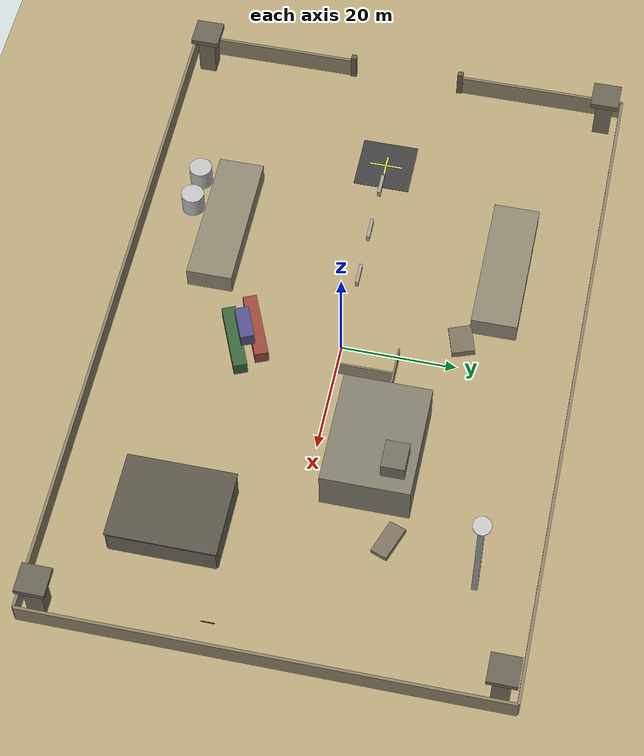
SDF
<sdf version="1.9">
 <world name="compound_ops">
  <physics name="1ms" type="ignore">
   <max_step_size>0.001</max_step_size>
   <real_time_factor>1.0</real_time_factor>
  </physics>
  <plugin filename="gz-sim-physics-system" name="gz::sim::systems::Physics"/>
  <plugin filename="gz-sim-scene-broadcaster-system" name="gz::sim::systems::SceneBroadcaster"/>
  <plugin filename="gz-sim-user-commands-system" name="gz::sim::systems::UserCommands"/>
  <plugin filename="gz-sim-sensors-system" name="gz::sim::systems::Sensors">
   <render_engine>ogre2</render_engine>
  </plugin>
  <plugin filename="gz-sim-imu-system" name="gz::sim::systems::Imu"/>
  <plugin filename="gz-sim-navsat-system" name="gz::sim::systems::NavSat"/>
  <plugin filename="gz-sim-apply-joint-force-system" name="gz::sim::systems::ApplyJointForce"/>
  <light type="directional" name="sun">
   <pose>0 0 50 0 0 0</pose>
   <diffuse>0.9 0.85 0.75 1</diffuse>
   <specular>0.3 0.3 0.3 1</specular>
   <direction>-0.5 0.3 -0.9</direction>
  </light>
  <scene>
   <ambient>0.6 0.55 0.45 1</ambient>
   <background>0.65 0.75 0.9 1</background>
   <shadows>true</shadows>
  </scene>
  <model name="ground_plane">
   <static>true</static>
   <link name="link">
    <collision name="collision">
     <geometry><plane><normal>0 0 1</normal><size>500 500</size></plane></geometry>
    </collision>
    <visual name="visual">
     <geometry><plane><normal>0 0 1</normal><size>500 500</size></plane></geometry>
     <material><ambient>0.72 0.65 0.48 1</ambient><diffuse>0.72 0.65 0.48 1</diffuse></material>
    </visual>
   </link>
  </model>
  <model name="wall_north">
   <static>true</static>
   <pose>0 40 2 0 0 0</pose>
   <link name="link">
    <collision name="collision"><geometry><box><size>120 0.5 4</size></box></geometry></collision>
    <visual name="visual">
     <geometry><box><size>120 0.5 4</size></box></geometry>
     <material><ambient>0.6 0.55 0.45 1</ambient><diffuse>0.55 0.50 0.40 1</diffuse></material>
    </visual>
   </link>
  </model>
  <model name="wall_south">
   <static>true</static>
   <pose>0 -40 2 0 0 0</pose>
   <link name="link">
    <collision name="collision"><geometry><box><size>120 0.5 4</size></box></geometry></collision>
    <visual name="visual">
     <geometry><box><size>120 0.5 4</size></box></geometry>
     <material><ambient>0.6 0.55 0.45 1</ambient><diffuse>0.55 0.50 0.40 1</diffuse></material>
    </visual>
   </link>
  </model>
  <model name="wall_east">
   <static>true</static>
   <pose>60 0 2 0 0 0</pose>
   <link name="link">
    <collision name="collision"><geometry><box><size>0.5 80 4</size></box></geometry></collision>
    <visual name="visual">
     <geometry><box><size>0.5 80 4</size></box></geometry>
     <material><ambient>0.6 0.55 0.45 1</ambient><diffuse>0.55 0.50 0.40 1</diffuse></material>
    </visual>
   </link>
  </model>
  <model name="wall_west_upper">
   <static>true</static>
   <pose>-60 25 2 0 0 0</pose>
   <link name="link">
    <collision name="collision"><geometry><box><size>0.5 30 4</size></box></geometry></collision>
    <visual name="visual">
     <geometry><box><size>0.5 30 4</size></box></geometry>
     <material><ambient>0.6 0.55 0.45 1</ambient><diffuse>0.55 0.50 0.40 1</diffuse></material>
    </visual>
   </link>
  </model>
  <model name="wall_west_lower">
   <static>true</static>
   <pose>-60 -25 2 0 0 0</pose>
   <link name="link">
    <collision name="collision"><geometry><box><size>0.5 30 4</size></box></geometry></collision>
    <visual name="visual">
     <geometry><box><size>0.5 30 4</size></box></geometry>
     <material><ambient>0.6 0.55 0.45 1</ambient><diffuse>0.55 0.50 0.40 1</diffuse></material>
    </visual>
   </link>
  </model>
  <model name="gate_post_left">
   <static>true</static>
   <pose>-60 -10 2.5 0 0 0</pose>
   <link name="link">
    <collision name="collision"><geometry><box><size>1 1 5</size></box></geometry></collision>
    <visual name="visual">
     <geometry><box><size>1 1 5</size></box></geometry>
     <material><ambient>0.4 0.35 0.3 1</ambient><diffuse>0.4 0.35 0.3 1</diffuse></material>
    </visual>
   </link>
  </model>
  <model name="gate_post_right">
   <static>true</static>
   <pose>-60 10 2.5 0 0 0</pose>
   <link name="link">
    <collision name="collision"><geometry><box><size>1 1 5</size></box></geometry></collision>
    <visual name="visual">
     <geometry><box><size>1 1 5</size></box></geometry>
     <material><ambient>0.4 0.35 0.3 1</ambient><diffuse>0.4 0.35 0.3 1</diffuse></material>
    </visual>
   </link>
  </model>
  <model name="command_building">
   <static>true</static>
   <pose>20 10 4 0 0 0</pose>
   <link name="link">
    <collision name="collision"><geometry><box><size>20 15 8</size></box></geometry></collision>
    <visual name="visual">
     <geometry><box><size>20 15 8</size></box></geometry>
     <material><ambient>0.5 0.48 0.42 1</ambient><diffuse>0.5 0.48 0.42 1</diffuse></material>
    </visual>
   </link>
  </model>
  <model name="command_rooftop">
   <static>true</static>
   <pose>25 14 9.5 0 0 0</pose>
   <link name="link">
    <collision name="collision"><geometry><box><size>5 4 3</size></box></geometry></collision>
    <visual name="visual">
     <geometry><box><size>5 4 3</size></box></geometry>
     <material><ambient>0.45 0.43 0.38 1</ambient><diffuse>0.45 0.43 0.38 1</diffuse></material>
    </visual>
   </link>
  </model>
  <model name="barracks_1">
   <static>true</static>
   <pose>-20 25 2 0 0 0</pose>
   <link name="link">
    <collision name="collision"><geometry><box><size>25 8 4</size></box></geometry></collision>
    <visual name="visual">
     <geometry><box><size>25 8 4</size></box></geometry>
     <material><ambient>0.55 0.52 0.44 1</ambient><diffuse>0.55 0.52 0.44 1</diffuse></material>
    </visual>
   </link>
  </model>
  <model name="barracks_2">
   <static>true</static>
   <pose>-20 -25 2 0 0 0</pose>
   <link name="link">
    <collision name="collision"><geometry><box><size>25 8 4</size></box></geometry></collision>
    <visual name="visual">
     <geometry><box><size>25 8 4</size></box></geometry>
     <material><ambient>0.55 0.52 0.44 1</ambient><diffuse>0.55 0.52 0.44 1</diffuse></material>
    </visual>
   </link>
  </model>
  <model name="motor_pool_back">
   <static>true</static>
   <pose>45 -20 2.5 0 0 0</pose>
   <link name="link">
    <collision name="collision"><geometry><box><size>0.5 18 5</size></box></geometry></collision>
    <visual name="visual">
     <geometry><box><size>0.5 18 5</size></box></geometry>
     <material><ambient>0.42 0.4 0.35 1</ambient><diffuse>0.42 0.4 0.35 1</diffuse></material>
    </visual>
   </link>
  </model>
  <model name="motor_pool_side_n">
   <static>true</static>
   <pose>38 -11 2.5 0 0 0</pose>
   <link name="link">
    <collision name="collision"><geometry><box><size>14 0.5 5</size></box></geometry></collision>
    <visual name="visual">
     <geometry><box><size>14 0.5 5</size></box></geometry>
     <material><ambient>0.42 0.4 0.35 1</ambient><diffuse>0.42 0.4 0.35 1</diffuse></material>
    </visual>
   </link>
  </model>
  <model name="motor_pool_side_s">
   <static>true</static>
   <pose>38 -29 2.5 0 0 0</pose>
   <link name="link">
    <collision name="collision"><geometry><box><size>14 0.5 5</size></box></geometry></collision>
    <visual name="visual">
     <geometry><box><size>14 0.5 5</size></box></geometry>
     <material><ambient>0.42 0.4 0.35 1</ambient><diffuse>0.42 0.4 0.35 1</diffuse></material>
    </visual>
   </link>
  </model>
  <model name="motor_pool_roof">
   <static>true</static>
   <pose>38 -20 5.25 0 0 0</pose>
   <link name="link">
    <collision name="collision"><geometry><box><size>15 18.5 0.3</size></box></geometry></collision>
    <visual name="visual">
     <geometry><box><size>15 18.5 0.3</size></box></geometry>
     <material><ambient>0.35 0.33 0.28 1</ambient><diffuse>0.35 0.33 0.28 1</diffuse></material>
    </visual>
   </link>
  </model>
  <model name="tower_ne">
   <static>true</static>
   <pose>57 37 4 0 0 0</pose>
   <link name="link">
    <collision name="base_col"><geometry><box><size>3 3 8</size></box></geometry></collision>
    <visual name="base_vis">
     <geometry><box><size>3 3 8</size></box></geometry>
     <material><ambient>0.45 0.42 0.35 1</ambient><diffuse>0.45 0.42 0.35 1</diffuse></material>
    </visual>
    <collision name="platform_col">
     <pose>0 0 4.5 0 0 0</pose>
     <geometry><box><size>5 5 1</size></box></geometry>
    </collision>
    <visual name="platform_vis">
     <pose>0 0 4.5 0 0 0</pose>
     <geometry><box><size>5 5 1</size></box></geometry>
     <material><ambient>0.4 0.38 0.32 1</ambient><diffuse>0.4 0.38 0.32 1</diffuse></material>
    </visual>
   </link>
  </model>
  <model name="tower_nw">
   <static>true</static>
   <pose>-57 37 4 0 0 0</pose>
   <link name="link">
    <collision name="base_col"><geometry><box><size>3 3 8</size></box></geometry></collision>
    <visual name="base_vis">
     <geometry><box><size>3 3 8</size></box></geometry>
     <material><ambient>0.45 0.42 0.35 1</ambient><diffuse>0.45 0.42 0.35 1</diffuse></material>
    </visual>
    <collision name="platform_col">
     <pose>0 0 4.5 0 0 0</pose>
     <geometry><box><size>5 5 1</size></box></geometry>
    </collision>
    <visual name="platform_vis">
     <pose>0 0 4.5 0 0 0</pose>
     <geometry><box><size>5 5 1</size></box></geometry>
     <material><ambient>0.4 0.38 0.32 1</ambient><diffuse>0.4 0.38 0.32 1</diffuse></material>
    </visual>
   </link>
  </model>
  <model name="tower_se">
   <static>true</static>
   <pose>57 -37 4 0 0 0</pose>
   <link name="link">
    <collision name="base_col"><geometry><box><size>3 3 8</size></box></geometry></collision>
    <visual name="base_vis">
     <geometry><box><size>3 3 8</size></box></geometry>
     <material><ambient>0.45 0.42 0.35 1</ambient><diffuse>0.45 0.42 0.35 1</diffuse></material>
    </visual>
    <collision name="platform_col">
     <pose>0 0 4.5 0 0 0</pose>
     <geometry><box><size>5 5 1</size></box></geometry>
    </collision>
    <visual name="platform_vis">
     <pose>0 0 4.5 0 0 0</pose>
     <geometry><box><size>5 5 1</size></box></geometry>
     <material><ambient>0.4 0.38 0.32 1</ambient><diffuse>0.4 0.38 0.32 1</diffuse></material>
    </visual>
   </link>
  </model>
  <model name="tower_sw">
   <static>true</static>
   <pose>-57 -37 4 0 0 0</pose>
   <link name="link">
    <collision name="base_col"><geometry><box><size>3 3 8</size></box></geometry></collision>
    <visual name="base_vis">
     <geometry><box><size>3 3 8</size></box></geometry>
     <material><ambient>0.45 0.42 0.35 1</ambient><diffuse>0.45 0.42 0.35 1</diffuse></material>
    </visual>
    <collision name="platform_col">
     <pose>0 0 4.5 0 0 0</pose>
     <geometry><box><size>5 5 1</size></box></geometry>
    </collision>
    <visual name="platform_vis">
     <pose>0 0 4.5 0 0 0</pose>
     <geometry><box><size>5 5 1</size></box></geometry>
     <material><ambient>0.4 0.38 0.32 1</ambient><diffuse>0.4 0.38 0.32 1</diffuse></material>
    </visual>
   </link>
  </model>
  <model name="barrier_1">
   <static>true</static>
   <pose>-35 0 0.6 0 0 0</pose>
   <link name="link">
    <collision name="collision"><geometry><box><size>4 0.6 1.2</size></box></geometry></collision>
    <visual name="visual">
     <geometry><box><size>4 0.6 1.2</size></box></geometry>
     <material><ambient>0.65 0.63 0.58 1</ambient><diffuse>0.65 0.63 0.58 1</diffuse></material>
    </visual>
   </link>
  </model>
  <model name="barrier_2">
   <static>true</static>
   <pose>-25 0 0.6 0 0 0</pose>
   <link name="link">
    <collision name="collision"><geometry><box><size>4 0.6 1.2</size></box></geometry></collision>
    <visual name="visual">
     <geometry><box><size>4 0.6 1.2</size></box></geometry>
     <material><ambient>0.65 0.63 0.58 1</ambient><diffuse>0.65 0.63 0.58 1</diffuse></material>
    </visual>
   </link>
  </model>
  <model name="barrier_3">
   <static>true</static>
   <pose>-15 0 0.6 0 0 0</pose>
   <link name="link">
    <collision name="collision"><geometry><box><size>4 0.6 1.2</size></box></geometry></collision>
    <visual name="visual">
     <geometry><box><size>4 0.6 1.2</size></box></geometry>
     <material><ambient>0.65 0.63 0.58 1</ambient><diffuse>0.65 0.63 0.58 1</diffuse></material>
    </visual>
   </link>
  </model>
  <model name="container_1">
   <static>true</static>
   <pose>0 -15 1.3 0 0 0.4</pose>
   <link name="link">
    <collision name="collision"><geometry><box><size>12 2.4 2.6</size></box></geometry></collision>
    <visual name="visual">
     <geometry><box><size>12 2.4 2.6</size></box></geometry>
     <material><ambient>0.55 0.25 0.2 1</ambient><diffuse>0.6 0.28 0.22 1</diffuse></material>
    </visual>
   </link>
  </model>
  <model name="container_2">
   <static>true</static>
   <pose>3 -18 1.3 0 0 0.4</pose>
   <link name="link">
    <collision name="collision"><geometry><box><size>12 2.4 2.6</size></box></geometry></collision>
    <visual name="visual">
     <geometry><box><size>12 2.4 2.6</size></box></geometry>
     <material><ambient>0.2 0.35 0.2 1</ambient><diffuse>0.22 0.4 0.22 1</diffuse></material>
    </visual>
   </link>
  </model>
  <model name="container_stacked">
   <static>true</static>
   <pose>1.5 -16.5 3.9 0 0 0.4</pose>
   <link name="link">
    <collision name="collision"><geometry><box><size>6 2.4 2.6</size></box></geometry></collision>
    <visual name="visual">
     <geometry><box><size>6 2.4 2.6</size></box></geometry>
     <material><ambient>0.3 0.3 0.5 1</ambient><diffuse>0.32 0.32 0.55 1</diffuse></material>
    </visual>
   </link>
  </model>
  <model name="rubble_1">
   <static>true</static>
   <pose>-5 20 0.75 0.1 0.05 0.3</pose>
   <link name="link">
    <collision name="collision"><geometry><box><size>5 4 1.5</size></box></geometry></collision>
    <visual name="visual">
     <geometry><box><size>5 4 1.5</size></box></geometry>
     <material><ambient>0.5 0.45 0.38 1</ambient><diffuse>0.5 0.45 0.38 1</diffuse></material>
    </visual>
   </link>
  </model>
  <model name="rubble_2">
   <static>true</static>
   <pose>35 15 0.5 0.05 -0.08 1.2</pose>
   <link name="link">
    <collision name="collision"><geometry><box><size>3 6 1</size></box></geometry></collision>
    <visual name="visual">
     <geometry><box><size>3 6 1</size></box></geometry>
     <material><ambient>0.5 0.45 0.38 1</ambient><diffuse>0.5 0.45 0.38 1</diffuse></material>
    </visual>
   </link>
  </model>
  <model name="comms_tower">
   <static>true</static>
   <pose>40 30 10 0 0 0</pose>
   <link name="link">
    <collision name="collision"><geometry><box><size>1 1 20</size></box></geometry></collision>
    <visual name="visual">
     <geometry><box><size>1 1 20</size></box></geometry>
     <material><ambient>0.5 0.5 0.5 1</ambient><diffuse>0.6 0.6 0.6 1</diffuse></material>
    </visual>
   </link>
  </model>
  <model name="comms_dish">
   <static>true</static>
   <pose>40 30 21 0 0.3 0</pose>
   <link name="link">
    <collision name="collision">
     <geometry><cylinder><radius>1.5</radius><length>0.3</length></cylinder></geometry>
    </collision>
    <visual name="visual">
     <geometry><cylinder><radius>1.5</radius><length>0.3</length></cylinder></geometry>
     <material><ambient>0.7 0.7 0.7 1</ambient><diffuse>0.8 0.8 0.8 1</diffuse></material>
    </visual>
   </link>
  </model>
  <model name="internal_wall_1">
   <static>true</static>
   <pose>5 10 1.5 0 0 0</pose>
   <link name="link">
    <collision name="collision"><geometry><box><size>10 0.3 3</size></box></geometry></collision>
    <visual name="visual">
     <geometry><box><size>10 0.3 3</size></box></geometry>
     <material><ambient>0.58 0.53 0.44 1</ambient><diffuse>0.58 0.53 0.44 1</diffuse></material>
    </visual>
   </link>
  </model>
  <model name="internal_wall_2">
   <static>true</static>
   <pose>5 5 1.5 0 0 1.5708</pose>
   <link name="link">
    <collision name="collision"><geometry><box><size>10 0.3 3</size></box></geometry></collision>
    <visual name="visual">
     <geometry><box><size>10 0.3 3</size></box></geometry>
     <material><ambient>0.58 0.53 0.44 1</ambient><diffuse>0.58 0.53 0.44 1</diffuse></material>
    </visual>
   </link>
  </model>
  <model name="landing_pad">
   <static>true</static>
   <pose>-40 0 0.05 0 0 0</pose>
   <link name="link">
    <collision name="collision"><geometry><box><size>10 10 0.1</size></box></geometry></collision>
    <visual name="visual">
     <geometry><box><size>10 10 0.1</size></box></geometry>
     <material><ambient>0.3 0.3 0.3 1</ambient><diffuse>0.25 0.25 0.25 1</diffuse></material>
    </visual>
   </link>
  </model>
  <model name="pad_marker_h">
   <static>true</static>
   <pose>-40 0 0.12 0 0 0</pose>
   <link name="link">
    <visual name="cross_ns">
     <geometry><box><size>0.3 6 0.01</size></box></geometry>
     <material><ambient>0.9 0.9 0.2 1</ambient><diffuse>0.95 0.95 0.3 1</diffuse></material>
    </visual>
    <visual name="cross_ew">
     <geometry><box><size>4 0.3 0.01</size></box></geometry>
     <material><ambient>0.9 0.9 0.2 1</ambient><diffuse>0.95 0.95 0.3 1</diffuse></material>
    </visual>
   </link>
  </model>
  <model name="fuel_tank_1">
   <static>true</static>
   <pose>-30 -32 2 0 0 0</pose>
   <link name="link">
    <collision name="collision">
     <geometry><cylinder><radius>2</radius><length>4</length></cylinder></geometry>
    </collision>
    <visual name="visual">
     <geometry><cylinder><radius>2</radius><length>4</length></cylinder></geometry>
     <material><ambient>0.7 0.7 0.7 1</ambient><diffuse>0.75 0.75 0.75 1</diffuse></material>
    </visual>
   </link>
  </model>
  <model name="fuel_tank_2">
   <static>true</static>
   <pose>-24 -32 2 0 0 0</pose>
   <link name="link">
    <collision name="collision">
     <geometry><cylinder><radius>2</radius><length>4</length></cylinder></geometry>
    </collision>
    <visual name="visual">
     <geometry><cylinder><radius>2</radius><length>4</length></cylinder></geometry>
     <material><ambient>0.7 0.7 0.7 1</ambient><diffuse>0.75 0.75 0.75 1</diffuse></material>
    </visual>
   </link>
  </model>
  <model name="missile_rack_frame">
   <static>true</static>
   <pose>42 -18 0.5 0 0 0</pose>
   <link name="link">
    <collision name="collision"><geometry><box><size>0.2 2.5 1.0</size></box></geometry></collision>
    <visual name="visual">
     <geometry><box><size>0.2 2.5 1.0</size></box></geometry>
     <material><ambient>0.3 0.3 0.3 1</ambient><diffuse>0.25 0.25 0.25 1</diffuse></material>
    </visual>
   </link>
  </model>
  <model name="hellfire_1">
   <static>true</static>
   <pose>42 -17.2 0.9 1.5708 0 0</pose>
   <link name="link">
    <visual name="body">
     <geometry><cylinder><radius>0.08</radius><length>1.8</length></cylinder></geometry>
     <material><ambient>0.15 0.15 0.15 1</ambient><diffuse>0.1 0.1 0.1 1</diffuse></material>
    </visual>
    <visual name="nose">
     <pose>0 0 0.95 0 0 0</pose>
     <geometry><cylinder><radius>0.04</radius><length>0.1</length></cylinder></geometry>
     <material><ambient>0.6 0.2 0.1 1</ambient><diffuse>0.6 0.2 0.1 1</diffuse></material>
    </visual>
   </link>
  </model>
  <model name="hellfire_2">
   <static>true</static>
   <pose>42 -18.0 0.9 1.5708 0 0</pose>
   <link name="link">
    <visual name="body">
     <geometry><cylinder><radius>0.08</radius><length>1.8</length></cylinder></geometry>
     <material><ambient>0.15 0.15 0.15 1</ambient><diffuse>0.1 0.1 0.1 1</diffuse></material>
    </visual>
    <visual name="nose">
     <pose>0 0 0.95 0 0 0</pose>
     <geometry><cylinder><radius>0.04</radius><length>0.1</length></cylinder></geometry>
     <material><ambient>0.6 0.2 0.1 1</ambient><diffuse>0.6 0.2 0.1 1</diffuse></material>
    </visual>
   </link>
  </model>
  <model name="sam_alpha">
   <static>true</static>
   <pose>55 -10 0.9 1.5708 0 0</pose>
   <link name="link">
    <visual name="body">
     <geometry><cylinder><radius>0.1</radius><length>2.2</length></cylinder></geometry>
     <material><ambient>0.6 0.15 0.1 1</ambient><diffuse>0.65 0.12 0.08 1</diffuse></material>
    </visual>
    <visual name="nose">
     <pose>0 0 1.15 0 0 0</pose>
     <geometry><cylinder><radius>0.05</radius><length>0.1</length></cylinder></geometry>
     <material><ambient>0.8 0.1 0.05 1</ambient><diffuse>0.8 0.1 0.05 1</diffuse></material>
    </visual>
   </link>
  </model>
  <spherical_coordinates>
   <surface_model>EARTH_WGS84</surface_model>
   <latitude_deg>32.990</latitude_deg>
   <longitude_deg>-106.975</longitude_deg>
   <elevation>1400</elevation>
   <heading_deg>0</heading_deg>
  </spherical_coordinates>
 </world>
</sdf>
